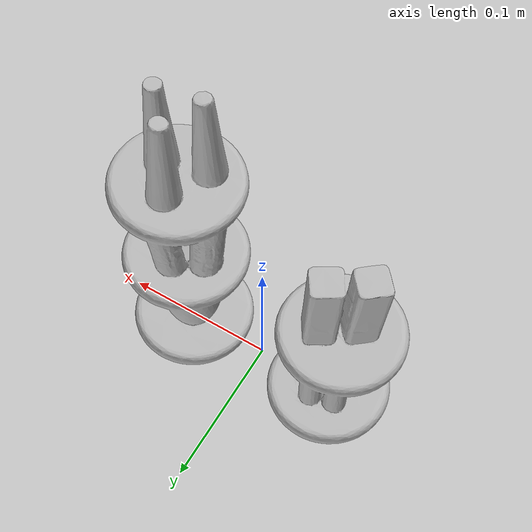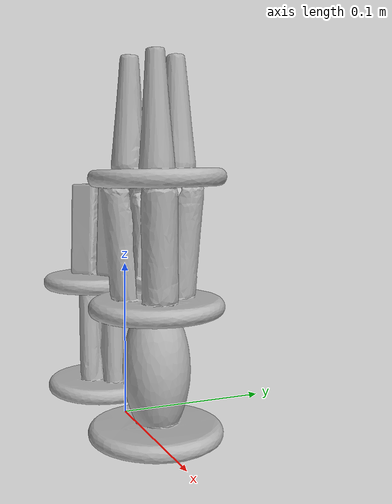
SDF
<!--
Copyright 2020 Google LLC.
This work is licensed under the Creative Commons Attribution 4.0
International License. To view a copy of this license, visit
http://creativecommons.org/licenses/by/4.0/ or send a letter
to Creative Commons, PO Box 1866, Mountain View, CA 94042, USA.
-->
<?xml version="1.0" ?>
<sdf version="1.6">
  <model name="TOWER_TUMBLING">
    <link name="link_0">
      <inertial>
        <mass>0.2</mass>
        <inertia>
          <ixx>0.00019800</ixx>
          <ixy>-0.00001075</ixy>
          <ixz>-0.00002451</ixz>
          <iyy>0.00018833</iyy>
          <iyz>0.00000320</iyz>
          <izz>0.00019127</izz>
        </inertia>
        <pose frame=''>0 0 0.12 0 0 0</pose>
      </inertial>
      <visual name="visual">
        <geometry>
          <mesh>
            <uri>meshes/model.obj</uri>
          </mesh>
        </geometry>
      </visual>
      <collision name="collision_0">
        <geometry>
          <mesh>
            <uri>meshes/model.obj</uri>
          </mesh>
        </geometry>
      </collision>
    </link>
  </model>
</sdf>
